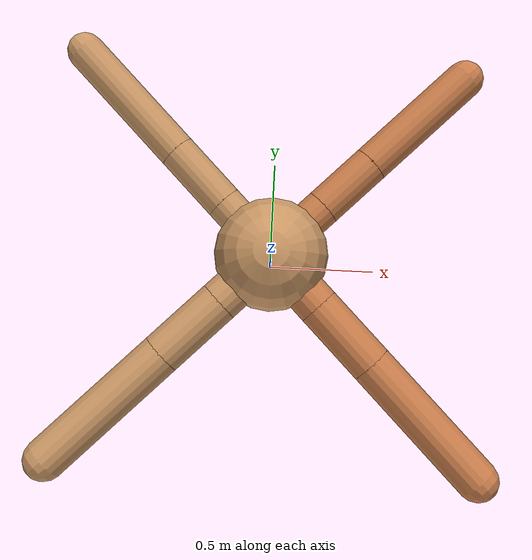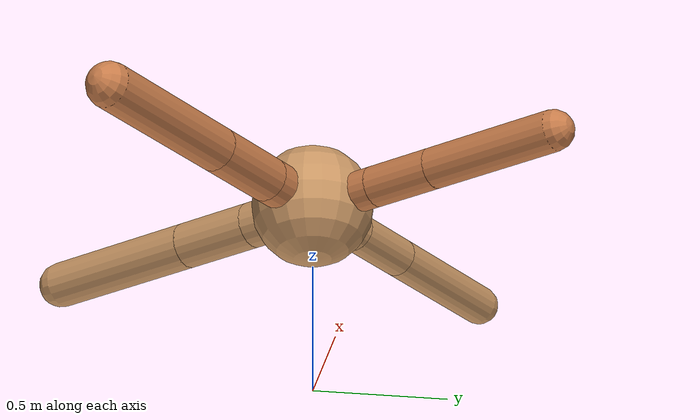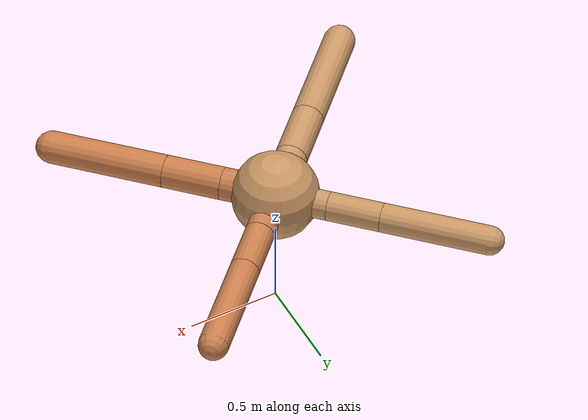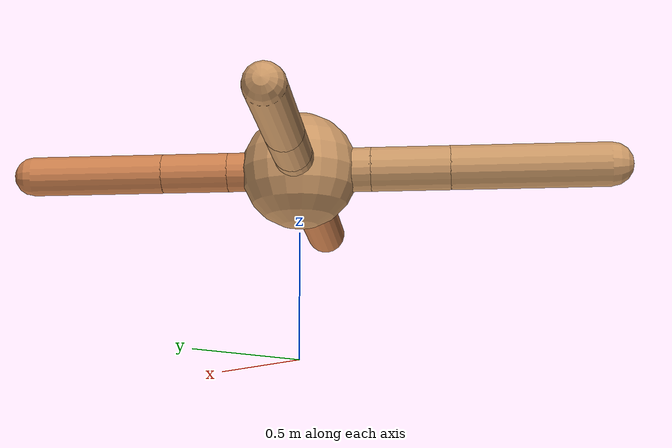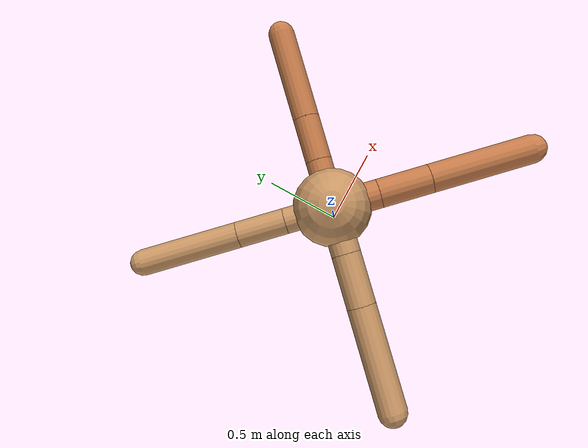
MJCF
<?xml version="1.0" ?>
<mujoco model="ant">

	<compiler angle="degree" coordinate="local" inertiafromgeom="true"/>

	<option integrator="RK4" timestep="0.01"/>

	<custom>

		<numeric data="0.0 0.0 0.55 1.0 0.0 0.0 0.0 0.0 1.0 0.0 -1.0 0.0 -1.0 0.0 1.0" name="init_qpos"/>

	</custom>

	<default>

		<joint armature="1" damping="1" limited="true"/>

		<geom conaffinity="0" condim="3" density="5.0" friction="1.5 0.1 0.1" margin="0.01" rgba="0.8 0.6 0.4 1"/>

	</default>

	<worldbody>

		<body name="torso" pos="0 0 0.75">

			<geom name="torso_geom" pos="0 0 0" size="0.2306343552039244" type="sphere"/>

			<!--joint armature="0" damping="0" limited="false" margin="0.01" name="root" pos="0 0 0" type="free"/-->

			<body name="front_left_leg" pos="0 0 0">

				<geom fromto="0 0 0 0.2 0.2 0" name="aux_1_geom" size="0.07729013769254235" type="capsule" rgba=".8 .5 .3 1"/>

				<body name="aux_1" pos="0.2 0.2 0">

					<joint axis="0 0 1" name="hip_1" pos="0.0 0.0 0.0" range="-40 40" type="hinge"/>

					<geom fromto="0 0 0 0.18509245024949184 0.18509245024949184 0" name="left_leg_geom" size="0.07729013769254235" type="capsule" rgba=".8 .5 .3 1"/>

					<body pos="0.18509245024949184 0.18509245024949184 0" name="front_left_foot">

						<joint axis="-1 1 0" name="ankle_1" pos="0.0 0.0 0.0" range="30 100" type="hinge"/>

						<geom fromto="0 0 0 0.37018490049898367 0.37018490049898367 0" name="left_ankle_geom" size="0.07729013769254235" type="capsule" rgba=".8 .5 .3 1"/>

					</body>

				</body>

			</body>

			<body name="front_right_leg" pos="0 0 0">

				<geom fromto="0 0 0 -0.2 0.2 0" name="aux_2_geom" size="0.07565292488405806" type="capsule"/>

				<body name="aux_2" pos="-0.2 0.2 0">

					<joint axis="0 0 1" name="hip_2" pos="0.0 0.0 0.0" range="-40 40" type="hinge"/>

					<geom fromto="0 0 0 -0.1994228558559979 0.1994228558559979 0" name="right_leg_geom" size="0.07565292488405806" type="capsule"/>

					<body pos="-0.1994228558559979 0.1994228558559979 0" name="front_right_foot">

						<joint axis="1 1 0" name="ankle_2" pos="0.0 0.0 0.0" range="-100 -30" type="hinge"/>

						<geom fromto="0 0 0 -0.3988457117119958 0.3988457117119958 0" name="right_ankle_geom" size="0.07565292488405806" type="capsule"/>

					</body>

				</body>

			</body>

			<body name="left_back_leg" pos="0 0 0">

				<geom fromto="0 0 0 -0.2 -0.2 0" name="aux_3_geom" size="0.08740888199363818" type="capsule"/>

				<body name="aux_3" pos="-0.2 -0.2 0">

					<joint axis="0 0 1" name="hip_3" pos="0.0 0.0 0.0" range="-40 40" type="hinge"/>

					<geom fromto="0 0 0 -0.2197258310058064 -0.2197258310058064 0" name="back_leg_geom" size="0.08740888199363818" type="capsule"/>

					<body pos="-0.2197258310058064 -0.2197258310058064 0" name="left_back_foot">

						<joint axis="-1 1 0" name="ankle_3" pos="0.0 0.0 0.0" range="-100 -30" type="hinge"/>

						<geom fromto="0 0 0 -0.4394516620116128 -0.4394516620116128 0" name="third_ankle_geom" size="0.08740888199363818" type="capsule"/>

					</body>

				</body>

			</body>

			<body name="right_back_leg" pos="0 0 0">

				<geom fromto="0 0 0 0.2 -0.2 0" name="aux_4_geom" size="0.08593731371191952" type="capsule" rgba=".8 .5 .3 1"/>

				<body name="aux_4" pos="0.2 -0.2 0">

					<joint axis="0 0 1" name="hip_4" pos="0.0 0.0 0.0" range="-40 40" type="hinge"/>

					<geom fromto="0 0 0 0.21976926780454975 -0.21976926780454975 0" name="rightback_leg_geom" size="0.08593731371191952" type="capsule" rgba=".8 .5 .3 1"/>

					<body pos="0.21976926780454975 -0.21976926780454975 0" name="right_back_foot">

						<joint axis="1 1 0" name="ankle_4" pos="0.0 0.0 0.0" range="30 100" type="hinge"/>

						<geom fromto="0 0 0 0.4395385356090995 -0.4395385356090995 0" name="fourth_ankle_geom" size="0.08593731371191952" type="capsule" rgba=".8 .5 .3 1"/>

					</body>

				</body>

			</body>

		</body>

	</worldbody>

	<actuator>

		<motor ctrllimited="true" ctrlrange="-1.0 1.0" joint="hip_4" gear="150"/>

		<motor ctrllimited="true" ctrlrange="-1.0 1.0" joint="ankle_4" gear="150"/>

		<motor ctrllimited="true" ctrlrange="-1.0 1.0" joint="hip_1" gear="150"/>

		<motor ctrllimited="true" ctrlrange="-1.0 1.0" joint="ankle_1" gear="150"/>

		<motor ctrllimited="true" ctrlrange="-1.0 1.0" joint="hip_2" gear="150"/>

		<motor ctrllimited="true" ctrlrange="-1.0 1.0" joint="ankle_2" gear="150"/>

		<motor ctrllimited="true" ctrlrange="-1.0 1.0" joint="hip_3" gear="150"/>

		<motor ctrllimited="true" ctrlrange="-1.0 1.0" joint="ankle_3" gear="150"/>

	</actuator>

</mujoco>
